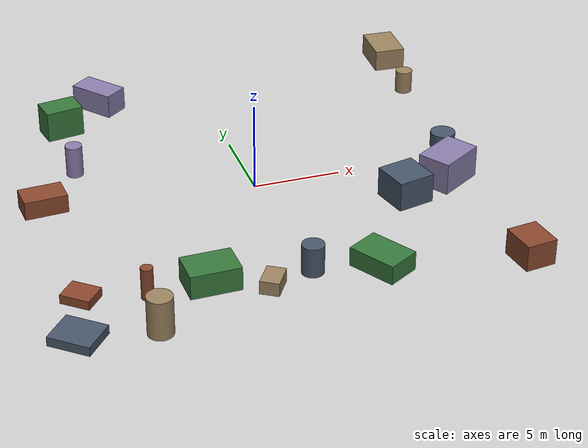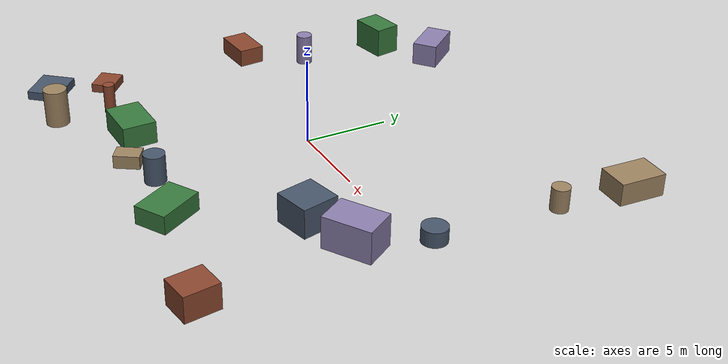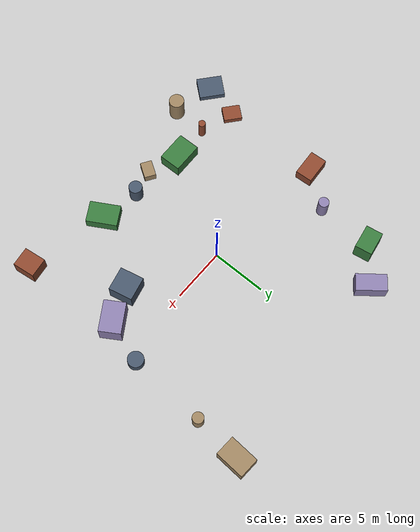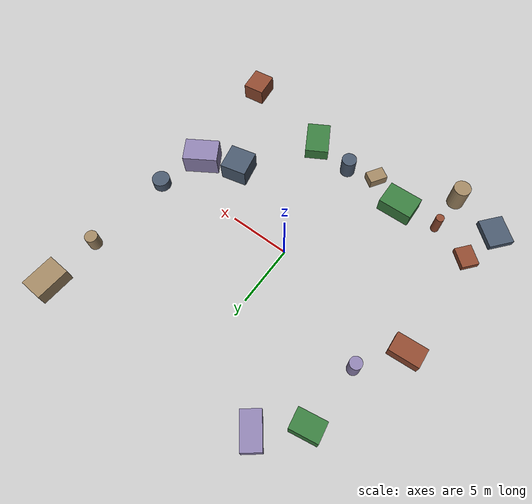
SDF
<sdf version="1.10">
 <world name="robotx_task1_uav_view">
  <gravity>0 0 -9.81</gravity>
  <physics name="physics" type="ode">
   <max_step_size>0.002</max_step_size>
   <real_time_factor>1.0</real_time_factor>
  </physics>
  <scene>
   <ambient>0.22 0.20 0.18 1.0</ambient>
   <background>0.74 0.55 0.44 1.0</background>
   <shadows>true</shadows>
   <grid>false</grid>
  </scene>
  <light name="sun" type="directional">
   <pose>0 0 300 0 0 0</pose>
   <diffuse>0.95 0.74 0.56 1.0</diffuse>
   <specular>1.00 0.87 0.71 1.0</specular>
   <direction>-0.40 0.20 -0.88</direction>
   <attenuation>
    <range>2500</range>
    <constant>0.85</constant>
    <linear>0.001</linear>
    <quadratic>0.00005</quadratic>
   </attenuation>
  </light>
  <plugin filename="gz-sim-physics-system" name="gz::sim::systems::Physics"/>
  <plugin filename="gz-sim-user-commands-system" name="gz::sim::systems::UserCommands"/>
  <plugin filename="gz-sim-scene-broadcaster-system" name="gz::sim::systems::SceneBroadcaster"/>
  <plugin filename="gz-sim-sensors-system" name="gz::sim::systems::Sensors">
   <render_engine>ogre2</render_engine>
  </plugin>
  <model name="scene_clutter_box_000">
   <static>true</static>
   <pose>12.746 12.731 0.670 0 0 -1.624825</pose>
   <link name="link">
    <visual name="v">
     <geometry><box><size>2.716 1.867 1.300</size></box></geometry>
     <material><ambient>0.45 0.38 0.32 1.0</ambient><diffuse>0.62 0.52 0.38 1.0</diffuse></material>
    </visual>
   </link>
  </model>
  <model name="scene_clutter_box_001">
   <static>true</static>
   <pose>-12.522 -11.250 0.278 0 0 2.441192</pose>
   <link name="link">
    <visual name="v">
     <geometry><box><size>2.345 2.021 0.516</size></box></geometry>
     <material><ambient>0.18 0.22 0.28 1.0</ambient><diffuse>0.28 0.34 0.42 1.0</diffuse></material>
    </visual>
   </link>
  </model>
  <model name="scene_clutter_box_002">
   <static>true</static>
   <pose>-11.670 -7.957 0.275 0 0 0.872334</pose>
   <link name="link">
    <visual name="v">
     <geometry><box><size>1.390 1.666 0.510</size></box></geometry>
     <material><ambient>0.35 0.16 0.12 1.0</ambient><diffuse>0.55 0.28 0.18 1.0</diffuse></material>
    </visual>
   </link>
  </model>
  <model name="scene_clutter_box_003">
   <static>true</static>
   <pose>3.767 -9.958 0.560 0 0 2.098073</pose>
   <link name="link">
    <visual name="v">
     <geometry><box><size>2.808 1.942 1.080</size></box></geometry>
     <material><ambient>0.12 0.30 0.14 1.0</ambient><diffuse>0.22 0.48 0.24 1.0</diffuse></material>
    </visual>
   </link>
  </model>
  <model name="scene_clutter_box_004">
   <static>true</static>
   <pose>-6.199 12.073 0.723 0 0 -0.900255</pose>
   <link name="link">
    <visual name="v">
     <geometry><box><size>2.741 1.519 1.407</size></box></geometry>
     <material><ambient>0.40 0.35 0.50 1.0</ambient><diffuse>0.55 0.50 0.68 1.0</diffuse></material>
    </visual>
   </link>
  </model>
  <model name="scene_clutter_box_005">
   <static>true</static>
   <pose>-2.176 -9.945 0.404 0 0 -0.571007</pose>
   <link name="link">
    <visual name="v">
     <geometry><box><size>1.053 1.488 0.768</size></box></geometry>
     <material><ambient>0.45 0.38 0.32 1.0</ambient><diffuse>0.62 0.52 0.38 1.0</diffuse></material>
    </visual>
   </link>
  </model>
  <model name="scene_clutter_box_006">
   <static>true</static>
   <pose>7.540 -3.826 0.869 0 0 1.794627</pose>
   <link name="link">
    <visual name="v">
     <geometry><box><size>2.180 2.160 1.698</size></box></geometry>
     <material><ambient>0.18 0.22 0.28 1.0</ambient><diffuse>0.28 0.34 0.42 1.0</diffuse></material>
    </visual>
   </link>
  </model>
  <model name="scene_clutter_box_007">
   <static>true</static>
   <pose>11.409 -11.601 0.760 0 0 1.703174</pose>
   <link name="link">
    <visual name="v">
     <geometry><box><size>2.010 1.753 1.480</size></box></geometry>
     <material><ambient>0.35 0.16 0.12 1.0</ambient><diffuse>0.55 0.28 0.18 1.0</diffuse></material>
    </visual>
   </link>
  </model>
  <model name="scene_clutter_box_008">
   <static>true</static>
   <pose>-5.098 -8.712 0.690 0 0 0.023780</pose>
   <link name="link">
    <visual name="v">
     <geometry><box><size>2.774 1.982 1.339</size></box></geometry>
     <material><ambient>0.12 0.30 0.14 1.0</ambient><diffuse>0.22 0.48 0.24 1.0</diffuse></material>
    </visual>
   </link>
  </model>
  <model name="scene_clutter_cyl_009">
   <static>true</static>
   <pose>-9.328 4.440 0.978 0 0 1.741191</pose>
   <link name="link">
    <visual name="v">
     <geometry><cylinder><radius>0.481</radius><length>1.857</length></cylinder></geometry>
     <material><ambient>0.40 0.35 0.50 1.0</ambient><diffuse>0.55 0.50 0.68 1.0</diffuse></material>
    </visual>
   </link>
  </model>
  <model name="scene_clutter_cyl_010">
   <static>true</static>
   <pose>-8.590 -12.014 1.137 0 0 -2.890512</pose>
   <link name="link">
    <visual name="v">
     <geometry><cylinder><radius>0.684</radius><length>2.175</length></cylinder></geometry>
     <material><ambient>0.45 0.38 0.32 1.0</ambient><diffuse>0.62 0.52 0.38 1.0</diffuse></material>
    </visual>
   </link>
  </model>
  <model name="scene_clutter_cyl_011">
   <static>true</static>
   <pose>11.876 1.044 0.487 0 0 1.924410</pose>
   <link name="link">
    <visual name="v">
     <geometry><cylinder><radius>0.722</radius><length>0.874</length></cylinder></geometry>
     <material><ambient>0.18 0.22 0.28 1.0</ambient><diffuse>0.28 0.34 0.42 1.0</diffuse></material>
    </visual>
   </link>
  </model>
  <model name="scene_clutter_box_012">
   <static>true</static>
   <pose>-11.766 1.236 0.551 0 0 -1.505282</pose>
   <link name="link">
    <visual name="v">
     <geometry><box><size>1.558 2.434 1.062</size></box></geometry>
     <material><ambient>0.35 0.16 0.12 1.0</ambient><diffuse>0.55 0.28 0.18 1.0</diffuse></material>
    </visual>
   </link>
  </model>
  <model name="scene_clutter_box_013">
   <static>true</static>
   <pose>-9.033 9.624 0.919 0 0 1.739483</pose>
   <link name="link">
    <visual name="v">
     <geometry><box><size>1.561 2.203 1.798</size></box></geometry>
     <material><ambient>0.12 0.30 0.14 1.0</ambient><diffuse>0.22 0.48 0.24 1.0</diffuse></material>
    </visual>
   </link>
  </model>
  <model name="scene_clutter_box_014">
   <static>true</static>
   <pose>10.543 -2.693 0.951 0 0 -2.581934</pose>
   <link name="link">
    <visual name="v">
     <geometry><box><size>2.822 1.966 1.862</size></box></geometry>
     <material><ambient>0.40 0.35 0.50 1.0</ambient><diffuse>0.55 0.50 0.68 1.0</diffuse></material>
    </visual>
   </link>
  </model>
  <model name="scene_clutter_cyl_015">
   <static>true</static>
   <pose>12.366 8.314 0.736 0 0 -0.540094</pose>
   <link name="link">
    <visual name="v">
     <geometry><cylinder><radius>0.509</radius><length>1.371</length></cylinder></geometry>
     <material><ambient>0.45 0.38 0.32 1.0</ambient><diffuse>0.62 0.52 0.38 1.0</diffuse></material>
    </visual>
   </link>
  </model>
  <model name="scene_clutter_cyl_016">
   <static>true</static>
   <pose>0.201 -9.270 0.898 0 0 -1.562253</pose>
   <link name="link">
    <visual name="v">
     <geometry><cylinder><radius>0.610</radius><length>1.697</length></cylinder></geometry>
     <material><ambient>0.18 0.22 0.28 1.0</ambient><diffuse>0.28 0.34 0.42 1.0</diffuse></material>
    </visual>
   </link>
  </model>
  <model name="scene_clutter_cyl_017">
   <static>true</static>
   <pose>-8.448 -8.858 0.948 0 0 -0.982262</pose>
   <link name="link">
    <visual name="v">
     <geometry><cylinder><radius>0.328</radius><length>1.796</length></cylinder></geometry>
     <material><ambient>0.35 0.16 0.12 1.0</ambient><diffuse>0.55 0.28 0.18 1.0</diffuse></material>
    </visual>
   </link>
  </model>
  <model name="uav_dataset_camera">
   <static>false</static>
   <pose>0 0 26 0 0 0</pose>
   <plugin filename="librobotx_overhead_motion_plugin.dylib" name="robotx::OverheadMotionPlugin">
    <radius_x_m>9.73287</radius_x_m>
    <radius_y_m>6.96515</radius_y_m>
    <angular_speed_rad_s>0.037455</angular_speed_rad_s>
    <phase_rad>3.907669</phase_rad>
    <z_wobble_m>0.03320</z_wobble_m>
    <z_wobble_hz>0.05009</z_wobble_hz>
    <z_wobble_phase_rad>6.081773</z_wobble_phase_rad>
   </plugin>
   <link name="camera_link">
    <gravity>false</gravity>
    <sensor name="top_down_rgb" type="camera">
     <always_on>true</always_on>
     <update_rate>20</update_rate>
     <pose>0 0 0 0 1.57079632679 0</pose>
     <camera>
      <horizontal_fov>1.05</horizontal_fov>
      <image><width>1920</width><height>1080</height><format>R8G8B8</format></image>
      <clip><near>0.2</near><far>600</far></clip>
     </camera>
     <topic>/robotx/uav/camera/image_raw</topic>
     <visualize>true</visualize>
    </sensor>
   </link>
  </model>
 </world>
</sdf>
